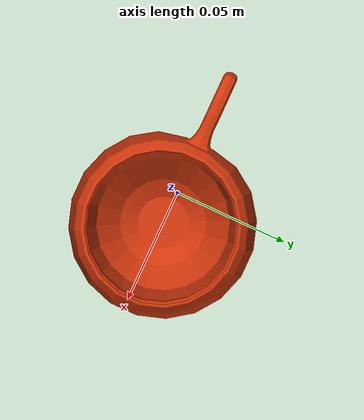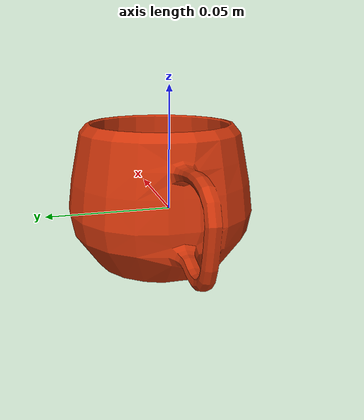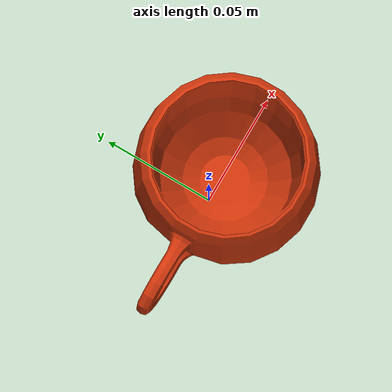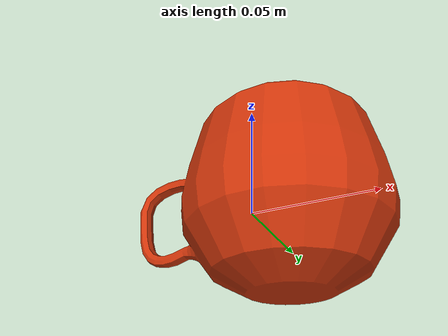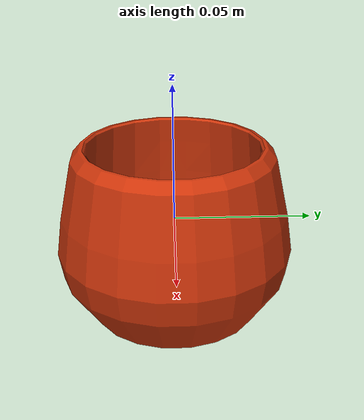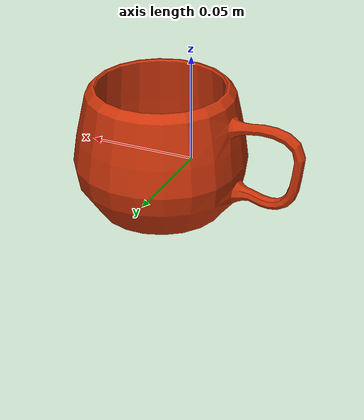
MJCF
<mujoco model="mug_25">
  <asset>
    <mesh file="visual/model_normalized_0.obj" name="model_normalized_0_vis" scale="0.11 0.11 0.11" refquat="-1.1102230246251565e-16 3.925231146709437e-17 3.925231146709438e-17 0.9999999999999999"/>
    <mesh file="collision/model_normalized_collision_22.obj" name="model_normalized_collision_22._coll" scale="0.11 0.11 0.11" refquat="-1.1102230246251565e-16 3.925231146709437e-17 3.925231146709438e-17 0.9999999999999999"/>
    <mesh file="collision/model_normalized_collision_23.obj" name="model_normalized_collision_23._coll" scale="0.11 0.11 0.11" refquat="-1.1102230246251565e-16 3.925231146709437e-17 3.925231146709438e-17 0.9999999999999999"/>
    <mesh file="collision/model_normalized_collision_21.obj" name="model_normalized_collision_21._coll" scale="0.11 0.11 0.11" refquat="-1.1102230246251565e-16 3.925231146709437e-17 3.925231146709438e-17 0.9999999999999999"/>
    <mesh file="collision/model_normalized_collision_20.obj" name="model_normalized_collision_20._coll" scale="0.11 0.11 0.11" refquat="-1.1102230246251565e-16 3.925231146709437e-17 3.925231146709438e-17 0.9999999999999999"/>
    <mesh file="collision/model_normalized_collision_24.obj" name="model_normalized_collision_24._coll" scale="0.11 0.11 0.11" refquat="-1.1102230246251565e-16 3.925231146709437e-17 3.925231146709438e-17 0.9999999999999999"/>
    <mesh file="collision/model_normalized_collision_30.obj" name="model_normalized_collision_30._coll" scale="0.11 0.11 0.11" refquat="-1.1102230246251565e-16 3.925231146709437e-17 3.925231146709438e-17 0.9999999999999999"/>
    <mesh file="collision/model_normalized_collision_18.obj" name="model_normalized_collision_18._coll" scale="0.11 0.11 0.11" refquat="-1.1102230246251565e-16 3.925231146709437e-17 3.925231146709438e-17 0.9999999999999999"/>
    <mesh file="collision/model_normalized_collision_19.obj" name="model_normalized_collision_19._coll" scale="0.11 0.11 0.11" refquat="-1.1102230246251565e-16 3.925231146709437e-17 3.925231146709438e-17 0.9999999999999999"/>
    <mesh file="collision/model_normalized_collision_31.obj" name="model_normalized_collision_31._coll" scale="0.11 0.11 0.11" refquat="-1.1102230246251565e-16 3.925231146709437e-17 3.925231146709438e-17 0.9999999999999999"/>
    <mesh file="collision/model_normalized_collision_25.obj" name="model_normalized_collision_25._coll" scale="0.11 0.11 0.11" refquat="-1.1102230246251565e-16 3.925231146709437e-17 3.925231146709438e-17 0.9999999999999999"/>
    <mesh file="collision/model_normalized_collision_27.obj" name="model_normalized_collision_27._coll" scale="0.11 0.11 0.11" refquat="-1.1102230246251565e-16 3.925231146709437e-17 3.925231146709438e-17 0.9999999999999999"/>
    <mesh file="collision/model_normalized_collision_26.obj" name="model_normalized_collision_26._coll" scale="0.11 0.11 0.11" refquat="-1.1102230246251565e-16 3.925231146709437e-17 3.925231146709438e-17 0.9999999999999999"/>
    <mesh file="collision/model_normalized_collision_9.obj" name="model_normalized_collision_9._coll" scale="0.11 0.11 0.11" refquat="-1.1102230246251565e-16 3.925231146709437e-17 3.925231146709438e-17 0.9999999999999999"/>
    <mesh file="collision/model_normalized_collision_8.obj" name="model_normalized_collision_8._coll" scale="0.11 0.11 0.11" refquat="-1.1102230246251565e-16 3.925231146709437e-17 3.925231146709438e-17 0.9999999999999999"/>
    <mesh file="collision/model_normalized_collision_6.obj" name="model_normalized_collision_6._coll" scale="0.11 0.11 0.11" refquat="-1.1102230246251565e-16 3.925231146709437e-17 3.925231146709438e-17 0.9999999999999999"/>
    <mesh file="collision/model_normalized_collision_7.obj" name="model_normalized_collision_7._coll" scale="0.11 0.11 0.11" refquat="-1.1102230246251565e-16 3.925231146709437e-17 3.925231146709438e-17 0.9999999999999999"/>
    <mesh file="collision/model_normalized_collision_5.obj" name="model_normalized_collision_5._coll" scale="0.11 0.11 0.11" refquat="-1.1102230246251565e-16 3.925231146709437e-17 3.925231146709438e-17 0.9999999999999999"/>
    <mesh file="collision/model_normalized_collision_4.obj" name="model_normalized_collision_4._coll" scale="0.11 0.11 0.11" refquat="-1.1102230246251565e-16 3.925231146709437e-17 3.925231146709438e-17 0.9999999999999999"/>
    <mesh file="collision/model_normalized_collision_0.obj" name="model_normalized_collision_0._coll" scale="0.11 0.11 0.11" refquat="-1.1102230246251565e-16 3.925231146709437e-17 3.925231146709438e-17 0.9999999999999999"/>
    <mesh file="collision/model_normalized_collision_1.obj" name="model_normalized_collision_1._coll" scale="0.11 0.11 0.11" refquat="-1.1102230246251565e-16 3.925231146709437e-17 3.925231146709438e-17 0.9999999999999999"/>
    <mesh file="collision/model_normalized_collision_3.obj" name="model_normalized_collision_3._coll" scale="0.11 0.11 0.11" refquat="-1.1102230246251565e-16 3.925231146709437e-17 3.925231146709438e-17 0.9999999999999999"/>
    <mesh file="collision/model_normalized_collision_2.obj" name="model_normalized_collision_2._coll" scale="0.11 0.11 0.11" refquat="-1.1102230246251565e-16 3.925231146709437e-17 3.925231146709438e-17 0.9999999999999999"/>
    <mesh file="collision/model_normalized_collision_17.obj" name="model_normalized_collision_17._coll" scale="0.11 0.11 0.11" refquat="-1.1102230246251565e-16 3.925231146709437e-17 3.925231146709438e-17 0.9999999999999999"/>
    <mesh file="collision/model_normalized_collision_16.obj" name="model_normalized_collision_16._coll" scale="0.11 0.11 0.11" refquat="-1.1102230246251565e-16 3.925231146709437e-17 3.925231146709438e-17 0.9999999999999999"/>
    <mesh file="collision/model_normalized_collision_28.obj" name="model_normalized_collision_28._coll" scale="0.11 0.11 0.11" refquat="-1.1102230246251565e-16 3.925231146709437e-17 3.925231146709438e-17 0.9999999999999999"/>
    <mesh file="collision/model_normalized_collision_14.obj" name="model_normalized_collision_14._coll" scale="0.11 0.11 0.11" refquat="-1.1102230246251565e-16 3.925231146709437e-17 3.925231146709438e-17 0.9999999999999999"/>
    <mesh file="collision/model_normalized_collision_15.obj" name="model_normalized_collision_15._coll" scale="0.11 0.11 0.11" refquat="-1.1102230246251565e-16 3.925231146709437e-17 3.925231146709438e-17 0.9999999999999999"/>
    <mesh file="collision/model_normalized_collision_29.obj" name="model_normalized_collision_29._coll" scale="0.11 0.11 0.11" refquat="-1.1102230246251565e-16 3.925231146709437e-17 3.925231146709438e-17 0.9999999999999999"/>
    <mesh file="collision/model_normalized_collision_11.obj" name="model_normalized_collision_11._coll" scale="0.11 0.11 0.11" refquat="-1.1102230246251565e-16 3.925231146709437e-17 3.925231146709438e-17 0.9999999999999999"/>
    <mesh file="collision/model_normalized_collision_10.obj" name="model_normalized_collision_10._coll" scale="0.11 0.11 0.11" refquat="-1.1102230246251565e-16 3.925231146709437e-17 3.925231146709438e-17 0.9999999999999999"/>
    <mesh file="collision/model_normalized_collision_12.obj" name="model_normalized_collision_12._coll" scale="0.11 0.11 0.11" refquat="-1.1102230246251565e-16 3.925231146709437e-17 3.925231146709438e-17 0.9999999999999999"/>
    <mesh file="collision/model_normalized_collision_13.obj" name="model_normalized_collision_13._coll" scale="0.11 0.11 0.11" refquat="-1.1102230246251565e-16 3.925231146709437e-17 3.925231146709438e-17 0.9999999999999999"/>
    <material name="material.079" specular="0.5" shininess="0.00226274" rgba="0.800000 0.204667 0.040000 1.0"/>
  </asset>
  <worldbody>
    <body>
      <body name="object">
        <geom solimp="0.998 0.998 0.001" solref="0.001 1" density="100" friction="0.95 0.3 0.1" type="mesh" mesh="model_normalized_0_vis" conaffinity="0" contype="0" group="1" material="material.079"/>
        <geom solimp="0.998 0.998 0.001" solref="0.001 1" density="100" friction="0.95 0.3 0.1" type="mesh" mesh="model_normalized_collision_22._coll" group="0" rgba="0.8 0.8 0.8 0.0"/>
        <geom solimp="0.998 0.998 0.001" solref="0.001 1" density="100" friction="0.95 0.3 0.1" type="mesh" mesh="model_normalized_collision_23._coll" group="0" rgba="0.8 0.8 0.8 0.0"/>
        <geom solimp="0.998 0.998 0.001" solref="0.001 1" density="100" friction="0.95 0.3 0.1" type="mesh" mesh="model_normalized_collision_21._coll" group="0" rgba="0.8 0.8 0.8 0.0"/>
        <geom solimp="0.998 0.998 0.001" solref="0.001 1" density="100" friction="0.95 0.3 0.1" type="mesh" mesh="model_normalized_collision_20._coll" group="0" rgba="0.8 0.8 0.8 0.0"/>
        <geom solimp="0.998 0.998 0.001" solref="0.001 1" density="100" friction="0.95 0.3 0.1" type="mesh" mesh="model_normalized_collision_24._coll" group="0" rgba="0.8 0.8 0.8 0.0"/>
        <geom solimp="0.998 0.998 0.001" solref="0.001 1" density="100" friction="0.95 0.3 0.1" type="mesh" mesh="model_normalized_collision_30._coll" group="0" rgba="0.8 0.8 0.8 0.0"/>
        <geom solimp="0.998 0.998 0.001" solref="0.001 1" density="100" friction="0.95 0.3 0.1" type="mesh" mesh="model_normalized_collision_18._coll" group="0" rgba="0.8 0.8 0.8 0.0"/>
        <geom solimp="0.998 0.998 0.001" solref="0.001 1" density="100" friction="0.95 0.3 0.1" type="mesh" mesh="model_normalized_collision_19._coll" group="0" rgba="0.8 0.8 0.8 0.0"/>
        <geom solimp="0.998 0.998 0.001" solref="0.001 1" density="100" friction="0.95 0.3 0.1" type="mesh" mesh="model_normalized_collision_31._coll" group="0" rgba="0.8 0.8 0.8 0.0"/>
        <geom solimp="0.998 0.998 0.001" solref="0.001 1" density="100" friction="0.95 0.3 0.1" type="mesh" mesh="model_normalized_collision_25._coll" group="0" rgba="0.8 0.8 0.8 0.0"/>
        <geom solimp="0.998 0.998 0.001" solref="0.001 1" density="100" friction="0.95 0.3 0.1" type="mesh" mesh="model_normalized_collision_27._coll" group="0" rgba="0.8 0.8 0.8 0.0"/>
        <geom solimp="0.998 0.998 0.001" solref="0.001 1" density="100" friction="0.95 0.3 0.1" type="mesh" mesh="model_normalized_collision_26._coll" group="0" rgba="0.8 0.8 0.8 0.0"/>
        <geom solimp="0.998 0.998 0.001" solref="0.001 1" density="100" friction="0.95 0.3 0.1" type="mesh" mesh="model_normalized_collision_9._coll" group="0" rgba="0.8 0.8 0.8 0.0"/>
        <geom solimp="0.998 0.998 0.001" solref="0.001 1" density="100" friction="0.95 0.3 0.1" type="mesh" mesh="model_normalized_collision_8._coll" group="0" rgba="0.8 0.8 0.8 0.0"/>
        <geom solimp="0.998 0.998 0.001" solref="0.001 1" density="100" friction="0.95 0.3 0.1" type="mesh" mesh="model_normalized_collision_6._coll" group="0" rgba="0.8 0.8 0.8 0.0"/>
        <geom solimp="0.998 0.998 0.001" solref="0.001 1" density="100" friction="0.95 0.3 0.1" type="mesh" mesh="model_normalized_collision_7._coll" group="0" rgba="0.8 0.8 0.8 0.0"/>
        <geom solimp="0.998 0.998 0.001" solref="0.001 1" density="100" friction="0.95 0.3 0.1" type="mesh" mesh="model_normalized_collision_5._coll" group="0" rgba="0.8 0.8 0.8 0.0"/>
        <geom solimp="0.998 0.998 0.001" solref="0.001 1" density="100" friction="0.95 0.3 0.1" type="mesh" mesh="model_normalized_collision_4._coll" group="0" rgba="0.8 0.8 0.8 0.0"/>
        <geom solimp="0.998 0.998 0.001" solref="0.001 1" density="100" friction="0.95 0.3 0.1" type="mesh" mesh="model_normalized_collision_0._coll" group="0" rgba="0.8 0.8 0.8 0.0"/>
        <geom solimp="0.998 0.998 0.001" solref="0.001 1" density="100" friction="0.95 0.3 0.1" type="mesh" mesh="model_normalized_collision_1._coll" group="0" rgba="0.8 0.8 0.8 0.0"/>
        <geom solimp="0.998 0.998 0.001" solref="0.001 1" density="100" friction="0.95 0.3 0.1" type="mesh" mesh="model_normalized_collision_3._coll" group="0" rgba="0.8 0.8 0.8 0.0"/>
        <geom solimp="0.998 0.998 0.001" solref="0.001 1" density="100" friction="0.95 0.3 0.1" type="mesh" mesh="model_normalized_collision_2._coll" group="0" rgba="0.8 0.8 0.8 0.0"/>
        <geom solimp="0.998 0.998 0.001" solref="0.001 1" density="100" friction="0.95 0.3 0.1" type="mesh" mesh="model_normalized_collision_17._coll" group="0" rgba="0.8 0.8 0.8 0.0"/>
        <geom solimp="0.998 0.998 0.001" solref="0.001 1" density="100" friction="0.95 0.3 0.1" type="mesh" mesh="model_normalized_collision_16._coll" group="0" rgba="0.8 0.8 0.8 0.0"/>
        <geom solimp="0.998 0.998 0.001" solref="0.001 1" density="100" friction="0.95 0.3 0.1" type="mesh" mesh="model_normalized_collision_28._coll" group="0" rgba="0.8 0.8 0.8 0.0"/>
        <geom solimp="0.998 0.998 0.001" solref="0.001 1" density="100" friction="0.95 0.3 0.1" type="mesh" mesh="model_normalized_collision_14._coll" group="0" rgba="0.8 0.8 0.8 0.0"/>
        <geom solimp="0.998 0.998 0.001" solref="0.001 1" density="100" friction="0.95 0.3 0.1" type="mesh" mesh="model_normalized_collision_15._coll" group="0" rgba="0.8 0.8 0.8 0.0"/>
        <geom solimp="0.998 0.998 0.001" solref="0.001 1" density="100" friction="0.95 0.3 0.1" type="mesh" mesh="model_normalized_collision_29._coll" group="0" rgba="0.8 0.8 0.8 0.0"/>
        <geom solimp="0.998 0.998 0.001" solref="0.001 1" density="100" friction="0.95 0.3 0.1" type="mesh" mesh="model_normalized_collision_11._coll" group="0" rgba="0.8 0.8 0.8 0.0"/>
        <geom solimp="0.998 0.998 0.001" solref="0.001 1" density="100" friction="0.95 0.3 0.1" type="mesh" mesh="model_normalized_collision_10._coll" group="0" rgba="0.8 0.8 0.8 0.0"/>
        <geom solimp="0.998 0.998 0.001" solref="0.001 1" density="100" friction="0.95 0.3 0.1" type="mesh" mesh="model_normalized_collision_12._coll" group="0" rgba="0.8 0.8 0.8 0.0"/>
        <geom solimp="0.998 0.998 0.001" solref="0.001 1" density="100" friction="0.95 0.3 0.1" type="mesh" mesh="model_normalized_collision_13._coll" group="0" rgba="0.8 0.8 0.8 0.0"/>
      </body>
      <site rgba="0 0 0 0" size="0.005" pos="0.00026135226884437977 0.00024154292120583508 -0.04344411060000001" name="bottom_site"/>
      <site rgba="0 0 0 0" size="0.005" pos="0.00026135226884437977 0.00024154292120583508 0.04344411060000001" name="top_site"/>
      <site rgba="0 0 0 0" size="0.005" pos="0.03926733661896815 0.054448709809207206 0.0" name="horizontal_radius_site"/>
    </body>
  </worldbody>
</mujoco>
